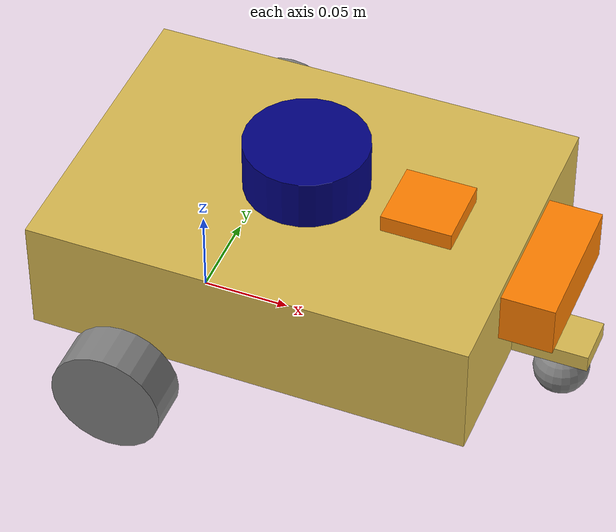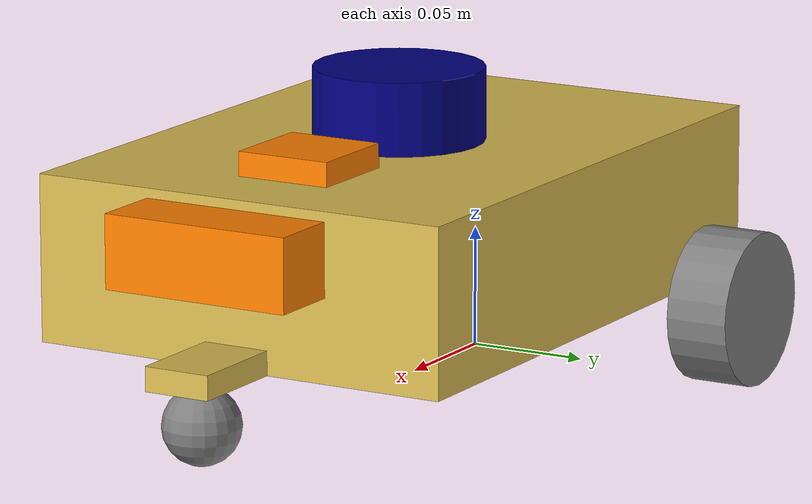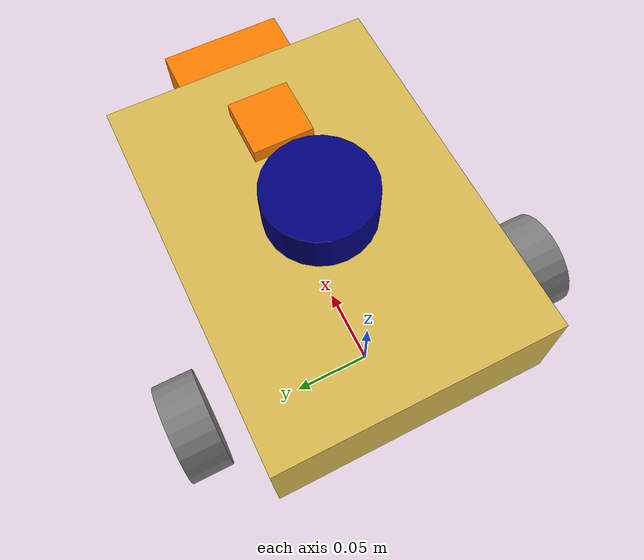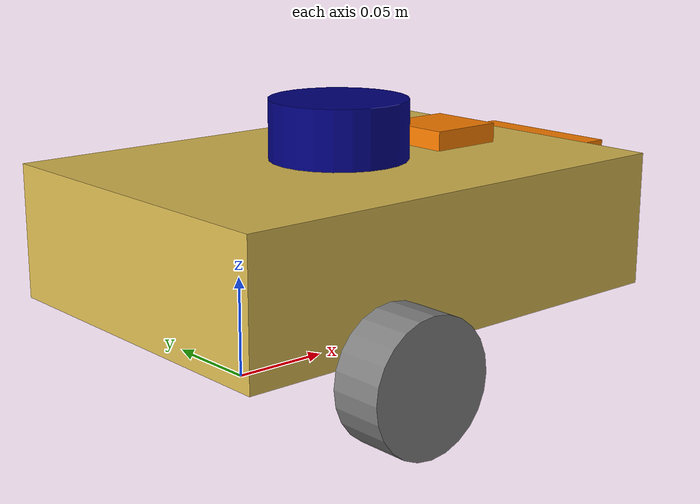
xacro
<?xml version="1.0"?>

<robot name="tennisbot" xmlns:xacro="http://www.ros.org/wiki/xacro">

<!-- Load Simulated or Real Hardware Interfaces -->
    <xacro:arg name="is_sim" default="true"/>

    <xacro:include filename="common_properties.xacro" />
    <xacro:include filename="tennisbot_gazebo.xacro" />
    <xacro:include filename="tennisbot_ros2_control.xacro" />

<!-- robot descirption -->

    <xacro:property name="base_length" value="0.25" />
    <xacro:property name="base_width" value="0.18" />
    <xacro:property name="base_height" value="0.068" />
    <xacro:property name="wheel_radius" value="0.0315" />
    <xacro:property name="wheel_length" value="0.026" />
    <xacro:property name="wheel_seperation" value="0.238" />

    <link name="base_footprint" />

    <link name="base_link">
        <visual>
            <origin xyz="0 0 ${base_height / 2.0} " rpy="0 0 0"/>
            <geometry>
                <box size="${base_length} ${base_width} ${base_height}" />
            </geometry>
            <material name="light_yellow" />
        </visual>
        <collision>
            <origin xyz="0 0 ${base_height / 2.0} " rpy="0 0 0"/>
            <geometry>
                <box size="${base_length} ${base_width} ${base_height}" />
            </geometry>
        </collision>
        <xacro:box_inertia m="2.5" x="${base_length}" y="${base_width}" z="${base_height}" o_xyz="0 0 ${base_height / 2.0}" o_rpy="0 0 0" />
    </link>

    <joint name="base_joint" type="fixed">
        <parent link="base_footprint" />
        <child link="base_link" />
        <origin xyz="0.0625 0 ${wheel_radius}" rpy="0 0 0" />
    </joint>

    <link name="left_wheel_link">
        <visual>
            <geometry>
                <cylinder radius="${wheel_radius}" length="${wheel_length}" />
            </geometry>
            <origin xyz="0 0 0" rpy="${pi / 2.0} 0 0" />
            <material name="grey" />
        </visual>
        <collision>
            <geometry>
                <sphere radius="${wheel_radius}" />
            </geometry>
            <origin xyz="0 0 0" rpy="0 0 0" />
        </collision>
        <xacro:cylinder_inertia m="0.5" r="${wheel_radius}" h="${wheel_length}" o_xyz="0 0 0" o_rpy="${pi / 2.0} 0 0" />
    </link>

    <joint name="base_leftwheel_joint" type="continuous">
        <parent link="base_link" />
        <child link="left_wheel_link" />
        <origin xyz="${-(base_length / 4.0)} ${(wheel_seperation / 2.0)} 0" rpy="0 0 0" />
        <axis xyz="0 1 0" />
    </joint>

    <link name="right_wheel_link">
        <visual>
            <geometry>
                <cylinder radius="${wheel_radius}" length="${wheel_length}" />
            </geometry>
            <origin xyz="0 0 0" rpy="${pi / 2.0} 0 0" />
            <material name="grey" />
        </visual>
        <collision>
            <geometry>
                <sphere radius="${wheel_radius}" />
            </geometry>
            <origin xyz="0 0 0" rpy="0 0 0" />
        </collision>
        <xacro:cylinder_inertia m="0.5" r="${wheel_radius}" h="${wheel_length}" o_xyz="0 0 0" o_rpy="${pi / 2.0} 0 0" />
    </link>

    <joint name="base_rightwheel_joint" type="continuous">
        <parent link="base_link" />
        <child link="right_wheel_link" />
        <origin xyz="${-(base_length / 4.0)} ${-(wheel_seperation / 2.0)} 0" rpy="0 0 0" />
        <axis xyz="0 1 0" />
    </joint>

    <link name="support_link">
        <visual>
            <origin xyz="0 0 ${0.01 / 2.0} " rpy="0 0 0"/>
            <geometry>
                <box size="0.043 0.028 0.01" />
            </geometry>
            <material name="light_yellow" />
        </visual>
        <collision>
            <origin xyz="0 0 ${0.01 / 2.0} " rpy="0 0 0"/>
            <geometry>
                <box size="0.043 0.028 0.01" />
            </geometry>
        </collision>
        <xacro:box_inertia m="0.05" x="0.043" y="0.028" z="0.01" o_xyz="0 0 ${0.01 / 2.0}" o_rpy="0 0 0" />
    </link>

    <joint name="support_joint" type="fixed">
        <parent link="base_link" />
        <child link="support_link" />
        <origin xyz="${base_length / 2.0 + 0.043 / 2.0} 0 0" rpy="0 0 0" />
    </joint>

    <link name="caster_wheel_link">
        <visual>
            <geometry>
                <sphere radius="${wheel_radius / 2.0}" />
            </geometry>
            <origin xyz="0 0 0" rpy="0 0 0" />
            <material name="grey" />
        </visual>
        <collision>
            <geometry>
                <sphere radius="${wheel_radius / 2.0}" />
            </geometry>
            <origin xyz="0 0 0" rpy="0 0 0" />
        </collision>
        <xacro:sphere_inertia m="0.25" r="${wheel_radius / 2.0}" o_xyz="0 0 0" o_rpy="0 0 0" />
    </link>

    <joint name="base_casterwheel_joint" type="fixed">
        <parent link="base_link" />
        <child link="caster_wheel_link" />
        <origin xyz="0.15 0 ${-wheel_radius / 2.0}" rpy="0 0 0" />
    </joint>

    <link name="IMU_link">
        <visual>
            <origin xyz="0 0 0.005 " rpy="0 0 0"/>
            <geometry>
                <box size="0.04 0.04 0.01" />
            </geometry>
            <material name="orange" />
        </visual>
        <collision>
            <origin xyz="0 0 0.005 " rpy="0 0 0"/>
            <geometry>
                <box size="0.04 0.04 0.01" />
            </geometry>
        </collision>
        <xacro:box_inertia m="0.1" x="0.04" y="0.04" z="0.01" o_xyz="0 0 0.005" o_rpy="0 0 0" />
    </link>

    <joint name="IMU_joint" type="fixed">
        <parent link="base_link" />
        <child link="IMU_link" />
        <origin xyz="0.07 0 ${base_height}" rpy="0 0 0" />
    </joint>

    <link name="laser_link">
        <visual>
            <geometry>
                <cylinder radius="0.035" length="0.06" />
            </geometry>
            <origin xyz="0 0 0" rpy="0 0 0" />
            <material name="blue" />
        </visual>
        <collision>
            <geometry>
                <cylinder radius="0.035" length="0.06" />
            </geometry>
            <origin xyz="0 0 0" rpy="0 0 0" />
        </collision>
        <xacro:cylinder_inertia m="0.17" r="0.035" h="0.06" o_xyz="0 0 0" o_rpy="0 0 0" />
    </link>

    <joint name="laser_joint" type="fixed">
        <parent link="base_link" />
        <child link="laser_link" />
        <origin xyz="0 0 ${base_height}" rpy="0 0 0" />
    </joint>

    <link name="camera_link">
        <visual>
            <origin xyz="0 0 0.015 " rpy="0 0 0"/>
            <geometry>
                <box size="0.03 0.08 0.03" />
            </geometry>
            <material name="orange" />
        </visual>
        <collision>
            <origin xyz="0 0 0.015 " rpy="0 0 0"/>
            <geometry>
                <box size="0.03 0.08 0.03" />
            </geometry>
        </collision>
        <xacro:box_inertia m="0.1" x="0.03" y="0.08" z="0.03" o_xyz="0 0 0.015" o_rpy="0 0 0" />
    </link>

    <joint name="camera_joint" type="fixed">
        <parent link="base_link" />
        <child link="camera_link" />
        <origin xyz="${base_length / 2.0 + 0.015} 0 ${base_height / 2.0}" rpy="0 0 0" />
    </joint>

    <link name="camera_optical_link"/>

    <joint name="camera_optical_joint" type="fixed">
        <parent link="camera_link"/>
        <child link="camera_optical_link"/>
        <origin xyz="0 0 0" rpy="${-pi/2} 0 ${-pi/2}"/>
    </joint>

</robot>

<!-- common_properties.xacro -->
<robot xmlns:xacro="http://www.ros.org/wiki/xacro">

    <material name="grey">
            <color rgba="0.5 0.5 0.5 1" />
    </material>
    <material name="blue">
            <color rgba="0 0 0.5 1" />
    </material>
    <material name="yellow">
        <color rgba="1 1 0 1" />
    </material>
    <material name="orange">
        <color rgba="1 0.5 0 1" />
    </material>
    <material name="light_yellow">
        <color rgba="0.851 0.729 0.314 1" />
    </material>

    <xacro:macro name="box_inertia" params="m x y z o_xyz o_rpy" >
        <inertial>
                <mass value="${m}" />
                <origin xyz="${o_xyz}" rpy="${o_rpy}" />
                <inertia ixx="${(m/12 * (y*y + z*z))}" ixy="0" ixz="0"
                                iyy="${(m/12 * (x*x + z*z))}" iyz="0"
                                       izz="${(m/12 * (y*y + x*x))}"  />
        </inertial>
    </xacro:macro>

    <xacro:macro name="cylinder_inertia" params="m r h o_xyz o_rpy" >
        <inertial>
                <mass value="${m}" />
                <origin xyz="${o_xyz}" rpy="${o_rpy}" />
                <inertia ixx="${(m/12 * (3*r*r + h*h))}" ixy="0" ixz="0"
                                iyy="${(m/12 * (3*r*r + h*h))}" iyz="0"
                                       izz="${(m/2 * (r*r))}"  />
        </inertial>
    </xacro:macro>

    <xacro:macro name="sphere_inertia" params="m r o_xyz o_rpy" >
        <inertial>
                <mass value="${m}" />
                <origin xyz="${o_xyz}" rpy="${o_rpy}" />
                <inertia ixx="${(m/5*2 * (r*r))}" ixy="0" ixz="0"
                                iyy="${(m/5*2 * (r*r))}" iyz="0"
                                       izz="${(m/5*2 * (r*r))}"  />
        </inertial>
    </xacro:macro>

</robot>
